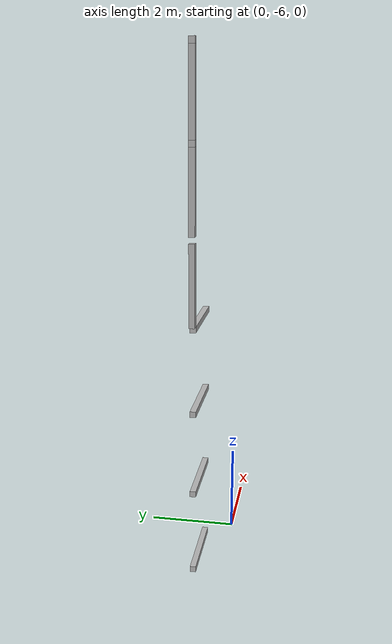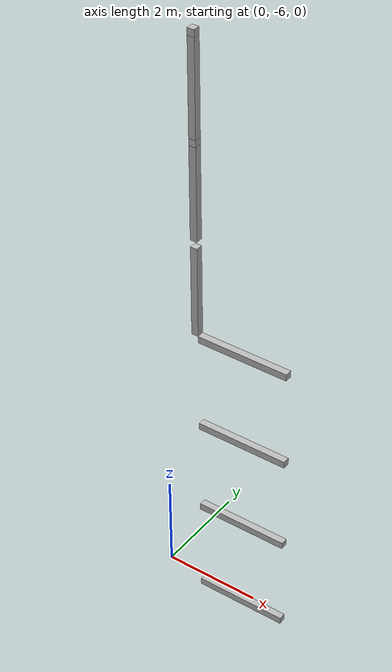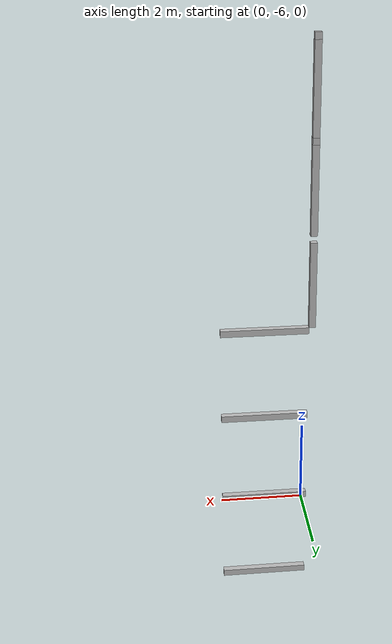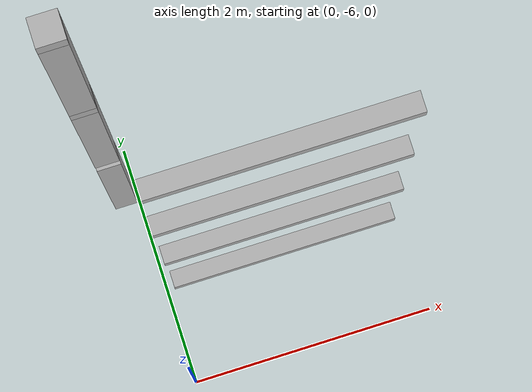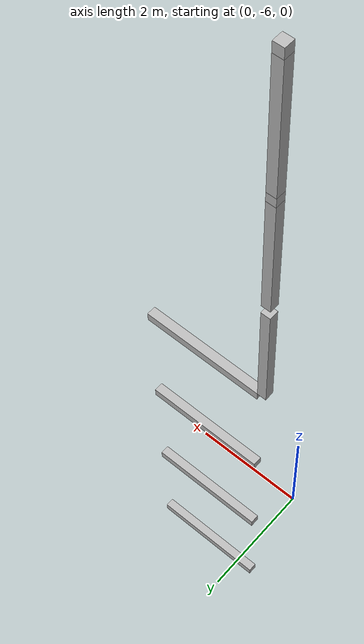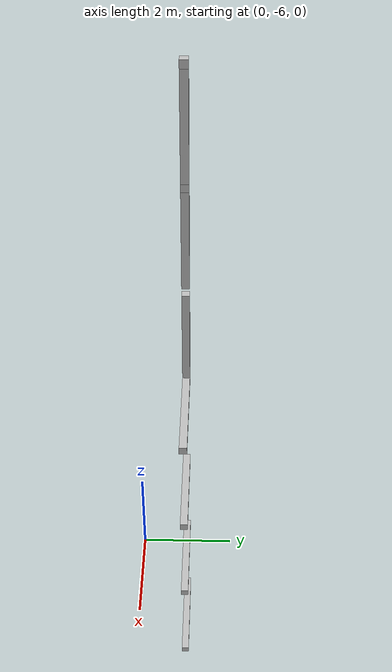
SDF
<sdf version="1.7">
 <world name="default">
  <model name="orthogonal_747_2.000.15_TS">
   <static>1</static>
   <link name="x_link_0_0_3">
    <inertial>
     <mass>1</mass>
     <inertia>
      <ixx>0.166667</ixx>
      <ixy>0</ixy>
      <ixz>0</ixz>
      <iyy>0.166667</iyy>
      <iyz>0</iyz>
      <izz>0.166667</izz>
     </inertia>
    </inertial>
    <pose>7.525 0 1.075 0 -0 0</pose>
    <visual name="visual_0">
     <laser_retro>64</laser_retro>
     <geometry><box><size>2 1e-06 0.15</size></box></geometry>
     <material>
      <script><name>Gazebo/Grey</name><uri>file://media/materials/scripts/gazebo.material</uri></script>
      <shader type="pixel"><normal_map>__default__</normal_map></shader>
      <ambient>0.678 0.498 0.659 1</ambient>
      <diffuse>0.7 0.7 0.7 1</diffuse>
      <specular>0.01 0.01 0.01 1</specular>
      <emissive>0 0 0 1</emissive>
     </material>
     <pose>0 -0.075 0 0 -0 0</pose>
     <transparency>1</transparency>
    </visual>
    <visual name="visual_1">
     <laser_retro>65</laser_retro>
     <geometry><box><size>2 1e-06 0.15</size></box></geometry>
     <material>
      <script><name>Gazebo/Grey</name><uri>file://media/materials/scripts/gazebo.material</uri></script>
      <shader type="pixel"><normal_map>__default__</normal_map></shader>
      <ambient>0.447 0.624 0.812 1</ambient>
      <diffuse>0.7 0.7 0.7 1</diffuse>
      <specular>0.01 0.01 0.01 1</specular>
      <emissive>0 0 0 1</emissive>
     </material>
     <pose>0 0.075 0 0 -0 0</pose>
     <transparency>1</transparency>
    </visual>
    <visual name="visual_2">
     <laser_retro>66</laser_retro>
     <geometry><box><size>2 0.15 1e-06</size></box></geometry>
     <material>
      <script><name>Gazebo/Grey</name><uri>file://media/materials/scripts/gazebo.material</uri></script>
      <shader type="pixel"><normal_map>__default__</normal_map></shader>
      <ambient>0.988 0.686 0.243 1</ambient>
      <diffuse>0.7 0.7 0.7 1</diffuse>
      <specular>0.01 0.01 0.01 1</specular>
      <emissive>0 0 0 1</emissive>
     </material>
     <pose>0 0 -0.075 0 -0 0</pose>
     <transparency>1</transparency>
    </visual>
    <visual name="visual_3">
     <laser_retro>67</laser_retro>
     <geometry><box><size>1e-06 0.15 0.15</size></box></geometry>
     <material>
      <script><name>Gazebo/Grey</name><uri>file://media/materials/scripts/gazebo.material</uri></script>
      <shader type="pixel"><normal_map>__default__</normal_map></shader>
      <ambient>0.988 0.914 0.31 1</ambient>
      <diffuse>0.7 0.7 0.7 1</diffuse>
      <specular>0.01 0.01 0.01 1</specular>
      <emissive>0 0 0 1</emissive>
     </material>
     <pose>1 0 0 0 -0 0</pose>
     <transparency>1</transparency>
    </visual>
    <visual name="visual_4">
     <laser_retro>68</laser_retro>
     <geometry><box><size>2 0.15 1e-06</size></box></geometry>
     <material>
      <script><name>Gazebo/Grey</name><uri>file://media/materials/scripts/gazebo.material</uri></script>
      <shader type="pixel"><normal_map>__default__</normal_map></shader>
      <ambient>0.937 0.161 0.161 1</ambient>
      <diffuse>0.7 0.7 0.7 1</diffuse>
      <specular>0.01 0.01 0.01 1</specular>
      <emissive>0 0 0 1</emissive>
     </material>
     <pose>0 0 0.075 0 -0 0</pose>
     <transparency>1</transparency>
    </visual>
    <visual name="visual_5">
     <laser_retro>69</laser_retro>
     <geometry><box><size>1e-06 0.15 0.15</size></box></geometry>
     <material>
      <script><name>Gazebo/Grey</name><uri>file://media/materials/scripts/gazebo.material</uri></script>
      <shader type="pixel"><normal_map>__default__</normal_map></shader>
      <ambient>0.541 0.886 0.204 1</ambient>
      <diffuse>0.7 0.7 0.7 1</diffuse>
      <specular>0.01 0.01 0.01 1</specular>
      <emissive>0 0 0 1</emissive>
     </material>
     <pose>-1 0 0 0 -0 0</pose>
     <transparency>1</transparency>
    </visual>
    <visual name="visual_texture">
     <geometry><box><size>1.9998 0.149985 0.149985</size></box></geometry>
     <material>
      <script>
       <uri>model://BASE_MODELS/simple_block_v2_textured/materials/scripts</uri>
       <uri>model://BASE_MODELS/simple_block_v2_textured/materials/textures</uri>
       <name>metal</name>
      </script>
     </material>
     <laser_retro>70</laser_retro>
    </visual>
    <collision name="collision">
     <geometry><box><size>2 0.15 0.15</size></box></geometry>
     <surface>
      <friction>
       <ode><mu>1</mu><mu2>1</mu2><fdir1>0 0 0</fdir1><slip1>0</slip1><slip2>0</slip2></ode>
       <torsional>
        <coefficient>1</coefficient>
        <patch_radius>0</patch_radius>
        <surface_radius>0</surface_radius>
        <use_patch_radius>1</use_patch_radius>
        <ode><slip>0</slip></ode>
       </torsional>
      </friction>
      <bounce><restitution_coefficient>0</restitution_coefficient><threshold>1e+06</threshold></bounce>
      <contact>
       <collide_without_contact>0</collide_without_contact>
       <collide_without_contact_bitmask>1</collide_without_contact_bitmask>
       <collide_bitmask>1</collide_bitmask>
       <ode>
        <soft_cfm>0</soft_cfm>
        <soft_erp>0.2</soft_erp>
        <kp>1e+13</kp>
        <kd>1</kd>
        <max_vel>0.01</max_vel>
        <min_depth>0</min_depth>
       </ode>
       <bullet>
        <split_impulse>1</split_impulse>
        <split_impulse_penetration_threshold>-0.01</split_impulse_penetration_threshold>
        <soft_cfm>0</soft_cfm>
        <soft_erp>0.2</soft_erp>
        <kp>1e+13</kp>
        <kd>1</kd>
       </bullet>
      </contact>
     </surface>
    </collision>
   </link>
   <link name="x_link_1_0_3">
    <inertial>
     <mass>1</mass>
     <inertia>
      <ixx>0.166667</ixx>
      <ixy>0</ixy>
      <ixz>0</ixz>
      <iyy>0.166667</iyy>
      <iyz>0</iyz>
      <izz>0.166667</izz>
     </inertia>
    </inertial>
    <pose>7.525 0 3.225 0 -0 0</pose>
    <visual name="visual_0">
     <laser_retro>834</laser_retro>
     <geometry><box><size>2 1e-06 0.15</size></box></geometry>
     <material>
      <script><name>Gazebo/Grey</name><uri>file://media/materials/scripts/gazebo.material</uri></script>
      <shader type="pixel"><normal_map>__default__</normal_map></shader>
      <ambient>0.678 0.498 0.659 1</ambient>
      <diffuse>0.7 0.7 0.7 1</diffuse>
      <specular>0.01 0.01 0.01 1</specular>
      <emissive>0 0 0 1</emissive>
     </material>
     <pose>0 -0.075 0 0 -0 0</pose>
     <transparency>1</transparency>
    </visual>
    <visual name="visual_1">
     <laser_retro>835</laser_retro>
     <geometry><box><size>2 1e-06 0.15</size></box></geometry>
     <material>
      <script><name>Gazebo/Grey</name><uri>file://media/materials/scripts/gazebo.material</uri></script>
      <shader type="pixel"><normal_map>__default__</normal_map></shader>
      <ambient>0.447 0.624 0.812 1</ambient>
      <diffuse>0.7 0.7 0.7 1</diffuse>
      <specular>0.01 0.01 0.01 1</specular>
      <emissive>0 0 0 1</emissive>
     </material>
     <pose>0 0.075 0 0 -0 0</pose>
     <transparency>1</transparency>
    </visual>
    <visual name="visual_2">
     <laser_retro>836</laser_retro>
     <geometry><box><size>2 0.15 1e-06</size></box></geometry>
     <material>
      <script><name>Gazebo/Grey</name><uri>file://media/materials/scripts/gazebo.material</uri></script>
      <shader type="pixel"><normal_map>__default__</normal_map></shader>
      <ambient>0.988 0.686 0.243 1</ambient>
      <diffuse>0.7 0.7 0.7 1</diffuse>
      <specular>0.01 0.01 0.01 1</specular>
      <emissive>0 0 0 1</emissive>
     </material>
     <pose>0 0 -0.075 0 -0 0</pose>
     <transparency>1</transparency>
    </visual>
    <visual name="visual_3">
     <laser_retro>837</laser_retro>
     <geometry><box><size>1e-06 0.15 0.15</size></box></geometry>
     <material>
      <script><name>Gazebo/Grey</name><uri>file://media/materials/scripts/gazebo.material</uri></script>
      <shader type="pixel"><normal_map>__default__</normal_map></shader>
      <ambient>0.988 0.914 0.31 1</ambient>
      <diffuse>0.7 0.7 0.7 1</diffuse>
      <specular>0.01 0.01 0.01 1</specular>
      <emissive>0 0 0 1</emissive>
     </material>
     <pose>1 0 0 0 -0 0</pose>
     <transparency>1</transparency>
    </visual>
    <visual name="visual_4">
     <laser_retro>838</laser_retro>
     <geometry><box><size>2 0.15 1e-06</size></box></geometry>
     <material>
      <script><name>Gazebo/Grey</name><uri>file://media/materials/scripts/gazebo.material</uri></script>
      <shader type="pixel"><normal_map>__default__</normal_map></shader>
      <ambient>0.937 0.161 0.161 1</ambient>
      <diffuse>0.7 0.7 0.7 1</diffuse>
      <specular>0.01 0.01 0.01 1</specular>
      <emissive>0 0 0 1</emissive>
     </material>
     <pose>0 0 0.075 0 -0 0</pose>
     <transparency>1</transparency>
    </visual>
    <visual name="visual_5">
     <laser_retro>839</laser_retro>
     <geometry><box><size>1e-06 0.15 0.15</size></box></geometry>
     <material>
      <script><name>Gazebo/Grey</name><uri>file://media/materials/scripts/gazebo.material</uri></script>
      <shader type="pixel"><normal_map>__default__</normal_map></shader>
      <ambient>0.541 0.886 0.204 1</ambient>
      <diffuse>0.7 0.7 0.7 1</diffuse>
      <specular>0.01 0.01 0.01 1</specular>
      <emissive>0 0 0 1</emissive>
     </material>
     <pose>-1 0 0 0 -0 0</pose>
     <transparency>1</transparency>
    </visual>
    <visual name="visual_texture">
     <geometry><box><size>1.9998 0.149985 0.149985</size></box></geometry>
     <material>
      <script>
       <uri>model://BASE_MODELS/simple_block_v2_textured/materials/scripts</uri>
       <uri>model://BASE_MODELS/simple_block_v2_textured/materials/textures</uri>
       <name>metal</name>
      </script>
     </material>
     <laser_retro>840</laser_retro>
    </visual>
    <collision name="collision">
     <geometry><box><size>2 0.15 0.15</size></box></geometry>
     <surface>
      <friction>
       <ode><mu>1</mu><mu2>1</mu2><fdir1>0 0 0</fdir1><slip1>0</slip1><slip2>0</slip2></ode>
       <torsional>
        <coefficient>1</coefficient>
        <patch_radius>0</patch_radius>
        <surface_radius>0</surface_radius>
        <use_patch_radius>1</use_patch_radius>
        <ode><slip>0</slip></ode>
       </torsional>
      </friction>
      <bounce><restitution_coefficient>0</restitution_coefficient><threshold>1e+06</threshold></bounce>
      <contact>
       <collide_without_contact>0</collide_without_contact>
       <collide_without_contact_bitmask>1</collide_without_contact_bitmask>
       <collide_bitmask>1</collide_bitmask>
       <ode>
        <soft_cfm>0</soft_cfm>
        <soft_erp>0.2</soft_erp>
        <kp>1e+13</kp>
        <kd>1</kd>
        <max_vel>0.01</max_vel>
        <min_depth>0</min_depth>
       </ode>
       <bullet>
        <split_impulse>1</split_impulse>
        <split_impulse_penetration_threshold>-0.01</split_impulse_penetration_threshold>
        <soft_cfm>0</soft_cfm>
        <soft_erp>0.2</soft_erp>
        <kp>1e+13</kp>
        <kd>1</kd>
       </bullet>
      </contact>
     </surface>
    </collision>
   </link>
   <link name="x_link_2_0_3">
    <inertial>
     <mass>1</mass>
     <inertia>
      <ixx>0.166667</ixx>
      <ixy>0</ixy>
      <ixz>0</ixz>
      <iyy>0.166667</iyy>
      <iyz>0</iyz>
      <izz>0.166667</izz>
     </inertia>
    </inertial>
    <pose>7.525 0 5.375 0 -0 0</pose>
    <visual name="visual_0">
     <laser_retro>1737</laser_retro>
     <geometry><box><size>2 1e-06 0.15</size></box></geometry>
     <material>
      <script><name>Gazebo/Grey</name><uri>file://media/materials/scripts/gazebo.material</uri></script>
      <shader type="pixel"><normal_map>__default__</normal_map></shader>
      <ambient>0.678 0.498 0.659 1</ambient>
      <diffuse>0.7 0.7 0.7 1</diffuse>
      <specular>0.01 0.01 0.01 1</specular>
      <emissive>0 0 0 1</emissive>
     </material>
     <pose>0 -0.075 0 0 -0 0</pose>
     <transparency>1</transparency>
    </visual>
    <visual name="visual_1">
     <laser_retro>1738</laser_retro>
     <geometry><box><size>2 1e-06 0.15</size></box></geometry>
     <material>
      <script><name>Gazebo/Grey</name><uri>file://media/materials/scripts/gazebo.material</uri></script>
      <shader type="pixel"><normal_map>__default__</normal_map></shader>
      <ambient>0.447 0.624 0.812 1</ambient>
      <diffuse>0.7 0.7 0.7 1</diffuse>
      <specular>0.01 0.01 0.01 1</specular>
      <emissive>0 0 0 1</emissive>
     </material>
     <pose>0 0.075 0 0 -0 0</pose>
     <transparency>1</transparency>
    </visual>
    <visual name="visual_2">
     <laser_retro>1739</laser_retro>
     <geometry><box><size>2 0.15 1e-06</size></box></geometry>
     <material>
      <script><name>Gazebo/Grey</name><uri>file://media/materials/scripts/gazebo.material</uri></script>
      <shader type="pixel"><normal_map>__default__</normal_map></shader>
      <ambient>0.988 0.686 0.243 1</ambient>
      <diffuse>0.7 0.7 0.7 1</diffuse>
      <specular>0.01 0.01 0.01 1</specular>
      <emissive>0 0 0 1</emissive>
     </material>
     <pose>0 0 -0.075 0 -0 0</pose>
     <transparency>1</transparency>
    </visual>
    <visual name="visual_3">
     <laser_retro>1740</laser_retro>
     <geometry><box><size>1e-06 0.15 0.15</size></box></geometry>
     <material>
      <script><name>Gazebo/Grey</name><uri>file://media/materials/scripts/gazebo.material</uri></script>
      <shader type="pixel"><normal_map>__default__</normal_map></shader>
      <ambient>0.988 0.914 0.31 1</ambient>
      <diffuse>0.7 0.7 0.7 1</diffuse>
      <specular>0.01 0.01 0.01 1</specular>
      <emissive>0 0 0 1</emissive>
     </material>
     <pose>1 0 0 0 -0 0</pose>
     <transparency>1</transparency>
    </visual>
    <visual name="visual_4">
     <laser_retro>1741</laser_retro>
     <geometry><box><size>2 0.15 1e-06</size></box></geometry>
     <material>
      <script><name>Gazebo/Grey</name><uri>file://media/materials/scripts/gazebo.material</uri></script>
      <shader type="pixel"><normal_map>__default__</normal_map></shader>
      <ambient>0.937 0.161 0.161 1</ambient>
      <diffuse>0.7 0.7 0.7 1</diffuse>
      <specular>0.01 0.01 0.01 1</specular>
      <emissive>0 0 0 1</emissive>
     </material>
     <pose>0 0 0.075 0 -0 0</pose>
     <transparency>1</transparency>
    </visual>
    <visual name="visual_5">
     <laser_retro>1742</laser_retro>
     <geometry><box><size>1e-06 0.15 0.15</size></box></geometry>
     <material>
      <script><name>Gazebo/Grey</name><uri>file://media/materials/scripts/gazebo.material</uri></script>
      <shader type="pixel"><normal_map>__default__</normal_map></shader>
      <ambient>0.541 0.886 0.204 1</ambient>
      <diffuse>0.7 0.7 0.7 1</diffuse>
      <specular>0.01 0.01 0.01 1</specular>
      <emissive>0 0 0 1</emissive>
     </material>
     <pose>-1 0 0 0 -0 0</pose>
     <transparency>1</transparency>
    </visual>
    <visual name="visual_texture">
     <geometry><box><size>1.9998 0.149985 0.149985</size></box></geometry>
     <material>
      <script>
       <uri>model://BASE_MODELS/simple_block_v2_textured/materials/scripts</uri>
       <uri>model://BASE_MODELS/simple_block_v2_textured/materials/textures</uri>
       <name>metal</name>
      </script>
     </material>
     <laser_retro>1743</laser_retro>
    </visual>
    <collision name="collision">
     <geometry><box><size>2 0.15 0.15</size></box></geometry>
     <surface>
      <friction>
       <ode><mu>1</mu><mu2>1</mu2><fdir1>0 0 0</fdir1><slip1>0</slip1><slip2>0</slip2></ode>
       <torsional>
        <coefficient>1</coefficient>
        <patch_radius>0</patch_radius>
        <surface_radius>0</surface_radius>
        <use_patch_radius>1</use_patch_radius>
        <ode><slip>0</slip></ode>
       </torsional>
      </friction>
      <bounce><restitution_coefficient>0</restitution_coefficient><threshold>1e+06</threshold></bounce>
      <contact>
       <collide_without_contact>0</collide_without_contact>
       <collide_without_contact_bitmask>1</collide_without_contact_bitmask>
       <collide_bitmask>1</collide_bitmask>
       <ode>
        <soft_cfm>0</soft_cfm>
        <soft_erp>0.2</soft_erp>
        <kp>1e+13</kp>
        <kd>1</kd>
        <max_vel>0.01</max_vel>
        <min_depth>0</min_depth>
       </ode>
       <bullet>
        <split_impulse>1</split_impulse>
        <split_impulse_penetration_threshold>-0.01</split_impulse_penetration_threshold>
        <soft_cfm>0</soft_cfm>
        <soft_erp>0.2</soft_erp>
        <kp>1e+13</kp>
        <kd>1</kd>
       </bullet>
      </contact>
     </surface>
    </collision>
   </link>
   <link name="x_link_3_0_3">
    <inertial>
     <mass>1</mass>
     <inertia>
      <ixx>0.166667</ixx>
      <ixy>0</ixy>
      <ixz>0</ixz>
      <iyy>0.166667</iyy>
      <iyz>0</iyz>
      <izz>0.166667</izz>
     </inertia>
    </inertial>
    <pose>7.525 0 7.525 0 -0 0</pose>
    <visual name="visual_0">
     <laser_retro>2640</laser_retro>
     <geometry><box><size>2 1e-06 0.15</size></box></geometry>
     <material>
      <script><name>Gazebo/Grey</name><uri>file://media/materials/scripts/gazebo.material</uri></script>
      <shader type="pixel"><normal_map>__default__</normal_map></shader>
      <ambient>0.678 0.498 0.659 1</ambient>
      <diffuse>0.7 0.7 0.7 1</diffuse>
      <specular>0.01 0.01 0.01 1</specular>
      <emissive>0 0 0 1</emissive>
     </material>
     <pose>0 -0.075 0 0 -0 0</pose>
     <transparency>1</transparency>
    </visual>
    <visual name="visual_1">
     <laser_retro>2641</laser_retro>
     <geometry><box><size>2 1e-06 0.15</size></box></geometry>
     <material>
      <script><name>Gazebo/Grey</name><uri>file://media/materials/scripts/gazebo.material</uri></script>
      <shader type="pixel"><normal_map>__default__</normal_map></shader>
      <ambient>0.447 0.624 0.812 1</ambient>
      <diffuse>0.7 0.7 0.7 1</diffuse>
      <specular>0.01 0.01 0.01 1</specular>
      <emissive>0 0 0 1</emissive>
     </material>
     <pose>0 0.075 0 0 -0 0</pose>
     <transparency>1</transparency>
    </visual>
    <visual name="visual_2">
     <laser_retro>2642</laser_retro>
     <geometry><box><size>2 0.15 1e-06</size></box></geometry>
     <material>
      <script><name>Gazebo/Grey</name><uri>file://media/materials/scripts/gazebo.material</uri></script>
      <shader type="pixel"><normal_map>__default__</normal_map></shader>
      <ambient>0.988 0.686 0.243 1</ambient>
      <diffuse>0.7 0.7 0.7 1</diffuse>
      <specular>0.01 0.01 0.01 1</specular>
      <emissive>0 0 0 1</emissive>
     </material>
     <pose>0 0 -0.075 0 -0 0</pose>
     <transparency>1</transparency>
    </visual>
    <visual name="visual_3">
     <laser_retro>2643</laser_retro>
     <geometry><box><size>1e-06 0.15 0.15</size></box></geometry>
     <material>
      <script><name>Gazebo/Grey</name><uri>file://media/materials/scripts/gazebo.material</uri></script>
      <shader type="pixel"><normal_map>__default__</normal_map></shader>
      <ambient>0.988 0.914 0.31 1</ambient>
      <diffuse>0.7 0.7 0.7 1</diffuse>
      <specular>0.01 0.01 0.01 1</specular>
      <emissive>0 0 0 1</emissive>
     </material>
     <pose>1 0 0 0 -0 0</pose>
     <transparency>1</transparency>
    </visual>
    <visual name="visual_4">
     <laser_retro>2644</laser_retro>
     <geometry><box><size>2 0.15 1e-06</size></box></geometry>
     <material>
      <script><name>Gazebo/Grey</name><uri>file://media/materials/scripts/gazebo.material</uri></script>
      <shader type="pixel"><normal_map>__default__</normal_map></shader>
      <ambient>0.937 0.161 0.161 1</ambient>
      <diffuse>0.7 0.7 0.7 1</diffuse>
      <specular>0.01 0.01 0.01 1</specular>
      <emissive>0 0 0 1</emissive>
     </material>
     <pose>0 0 0.075 0 -0 0</pose>
     <transparency>1</transparency>
    </visual>
    <visual name="visual_5">
     <laser_retro>2645</laser_retro>
     <geometry><box><size>1e-06 0.15 0.15</size></box></geometry>
     <material>
      <script><name>Gazebo/Grey</name><uri>file://media/materials/scripts/gazebo.material</uri></script>
      <shader type="pixel"><normal_map>__default__</normal_map></shader>
      <ambient>0.541 0.886 0.204 1</ambient>
      <diffuse>0.7 0.7 0.7 1</diffuse>
      <specular>0.01 0.01 0.01 1</specular>
      <emissive>0 0 0 1</emissive>
     </material>
     <pose>-1 0 0 0 -0 0</pose>
     <transparency>1</transparency>
    </visual>
    <visual name="visual_texture">
     <geometry><box><size>1.9998 0.149985 0.149985</size></box></geometry>
     <material>
      <script>
       <uri>model://BASE_MODELS/simple_block_v2_textured/materials/scripts</uri>
       <uri>model://BASE_MODELS/simple_block_v2_textured/materials/textures</uri>
       <name>metal</name>
      </script>
     </material>
     <laser_retro>2646</laser_retro>
    </visual>
    <collision name="collision">
     <geometry><box><size>2 0.15 0.15</size></box></geometry>
     <surface>
      <friction>
       <ode><mu>1</mu><mu2>1</mu2><fdir1>0 0 0</fdir1><slip1>0</slip1><slip2>0</slip2></ode>
       <torsional>
        <coefficient>1</coefficient>
        <patch_radius>0</patch_radius>
        <surface_radius>0</surface_radius>
        <use_patch_radius>1</use_patch_radius>
        <ode><slip>0</slip></ode>
       </torsional>
      </friction>
      <bounce><restitution_coefficient>0</restitution_coefficient><threshold>1e+06</threshold></bounce>
      <contact>
       <collide_without_contact>0</collide_without_contact>
       <collide_without_contact_bitmask>1</collide_without_contact_bitmask>
       <collide_bitmask>1</collide_bitmask>
       <ode>
        <soft_cfm>0</soft_cfm>
        <soft_erp>0.2</soft_erp>
        <kp>1e+13</kp>
        <kd>1</kd>
        <max_vel>0.01</max_vel>
        <min_depth>0</min_depth>
       </ode>
       <bullet>
        <split_impulse>1</split_impulse>
        <split_impulse_penetration_threshold>-0.01</split_impulse_penetration_threshold>
        <soft_cfm>0</soft_cfm>
        <soft_erp>0.2</soft_erp>
        <kp>1e+13</kp>
        <kd>1</kd>
       </bullet>
      </contact>
     </surface>
    </collision>
   </link>
   <link name="z_link_4_0_3">
    <inertial>
     <mass>1</mass>
     <inertia>
      <ixx>0.166667</ixx>
      <ixy>0</ixy>
      <ixz>0</ixz>
      <iyy>0.166667</iyy>
      <iyz>0</iyz>
      <izz>0.166667</izz>
     </inertia>
    </inertial>
    <pose>6.45 0 8.6 0 -0 0</pose>
    <visual name="visual_0">
     <laser_retro>3564</laser_retro>
     <geometry><box><size>0.15 1e-06 2</size></box></geometry>
     <material>
      <script><name>Gazebo/Grey</name><uri>file://media/materials/scripts/gazebo.material</uri></script>
      <shader type="pixel"><normal_map>__default__</normal_map></shader>
      <ambient>0.678 0.498 0.659 1</ambient>
      <diffuse>0.7 0.7 0.7 1</diffuse>
      <specular>0.01 0.01 0.01 1</specular>
      <emissive>0 0 0 1</emissive>
     </material>
     <pose>0 -0.075 0 0 -0 0</pose>
     <transparency>1</transparency>
    </visual>
    <visual name="visual_1">
     <laser_retro>3565</laser_retro>
     <geometry><box><size>0.15 1e-06 2</size></box></geometry>
     <material>
      <script><name>Gazebo/Grey</name><uri>file://media/materials/scripts/gazebo.material</uri></script>
      <shader type="pixel"><normal_map>__default__</normal_map></shader>
      <ambient>0.447 0.624 0.812 1</ambient>
      <diffuse>0.7 0.7 0.7 1</diffuse>
      <specular>0.01 0.01 0.01 1</specular>
      <emissive>0 0 0 1</emissive>
     </material>
     <pose>0 0.075 0 0 -0 0</pose>
     <transparency>1</transparency>
    </visual>
    <visual name="visual_2">
     <laser_retro>3566</laser_retro>
     <geometry><box><size>0.15 0.15 1e-06</size></box></geometry>
     <material>
      <script><name>Gazebo/Grey</name><uri>file://media/materials/scripts/gazebo.material</uri></script>
      <shader type="pixel"><normal_map>__default__</normal_map></shader>
      <ambient>0.988 0.686 0.243 1</ambient>
      <diffuse>0.7 0.7 0.7 1</diffuse>
      <specular>0.01 0.01 0.01 1</specular>
      <emissive>0 0 0 1</emissive>
     </material>
     <pose>0 0 -1 0 -0 0</pose>
     <transparency>1</transparency>
    </visual>
    <visual name="visual_3">
     <laser_retro>3567</laser_retro>
     <geometry><box><size>1e-06 0.15 2</size></box></geometry>
     <material>
      <script><name>Gazebo/Grey</name><uri>file://media/materials/scripts/gazebo.material</uri></script>
      <shader type="pixel"><normal_map>__default__</normal_map></shader>
      <ambient>0.988 0.914 0.31 1</ambient>
      <diffuse>0.7 0.7 0.7 1</diffuse>
      <specular>0.01 0.01 0.01 1</specular>
      <emissive>0 0 0 1</emissive>
     </material>
     <pose>0.075 0 0 0 -0 0</pose>
     <transparency>1</transparency>
    </visual>
    <visual name="visual_4">
     <laser_retro>3568</laser_retro>
     <geometry><box><size>0.15 0.15 1e-06</size></box></geometry>
     <material>
      <script><name>Gazebo/Grey</name><uri>file://media/materials/scripts/gazebo.material</uri></script>
      <shader type="pixel"><normal_map>__default__</normal_map></shader>
      <ambient>0.937 0.161 0.161 1</ambient>
      <diffuse>0.7 0.7 0.7 1</diffuse>
      <specular>0.01 0.01 0.01 1</specular>
      <emissive>0 0 0 1</emissive>
     </material>
     <pose>0 0 1 0 -0 0</pose>
     <transparency>1</transparency>
    </visual>
    <visual name="visual_5">
     <laser_retro>3569</laser_retro>
     <geometry><box><size>1e-06 0.15 2</size></box></geometry>
     <material>
      <script><name>Gazebo/Grey</name><uri>file://media/materials/scripts/gazebo.material</uri></script>
      <shader type="pixel"><normal_map>__default__</normal_map></shader>
      <ambient>0.541 0.886 0.204 1</ambient>
      <diffuse>0.7 0.7 0.7 1</diffuse>
      <specular>0.01 0.01 0.01 1</specular>
      <emissive>0 0 0 1</emissive>
     </material>
     <pose>-0.075 0 0 0 -0 0</pose>
     <transparency>1</transparency>
    </visual>
    <visual name="visual_texture">
     <geometry><box><size>0.149985 0.149985 1.9998</size></box></geometry>
     <material>
      <script>
       <uri>model://BASE_MODELS/simple_block_v2_textured/materials/scripts</uri>
       <uri>model://BASE_MODELS/simple_block_v2_textured/materials/textures</uri>
       <name>metal</name>
      </script>
     </material>
     <laser_retro>3570</laser_retro>
    </visual>
    <collision name="collision">
     <geometry><box><size>0.15 0.15 2</size></box></geometry>
     <surface>
      <friction>
       <ode><mu>1</mu><mu2>1</mu2><fdir1>0 0 0</fdir1><slip1>0</slip1><slip2>0</slip2></ode>
       <torsional>
        <coefficient>1</coefficient>
        <patch_radius>0</patch_radius>
        <surface_radius>0</surface_radius>
        <use_patch_radius>1</use_patch_radius>
        <ode><slip>0</slip></ode>
       </torsional>
      </friction>
      <bounce><restitution_coefficient>0</restitution_coefficient><threshold>1e+06</threshold></bounce>
      <contact>
       <collide_without_contact>0</collide_without_contact>
       <collide_without_contact_bitmask>1</collide_without_contact_bitmask>
       <collide_bitmask>1</collide_bitmask>
       <ode>
        <soft_cfm>0</soft_cfm>
        <soft_erp>0.2</soft_erp>
        <kp>1e+13</kp>
        <kd>1</kd>
        <max_vel>0.01</max_vel>
        <min_depth>0</min_depth>
       </ode>
       <bullet>
        <split_impulse>1</split_impulse>
        <split_impulse_penetration_threshold>-0.01</split_impulse_penetration_threshold>
        <soft_cfm>0</soft_cfm>
        <soft_erp>0.2</soft_erp>
        <kp>1e+13</kp>
        <kd>1</kd>
       </bullet>
      </contact>
     </surface>
    </collision>
   </link>
   <link name="u_link_5_0_3">
    <inertial>
     <mass>1</mass>
     <inertia>
      <ixx>0.166667</ixx>
      <ixy>0</ixy>
      <ixz>0</ixz>
      <iyy>0.166667</iyy>
      <iyz>0</iyz>
      <izz>0.166667</izz>
     </inertia>
    </inertial>
    <pose>6.45 0 11.825 0 -0 0</pose>
    <visual name="visual_0">
     <laser_retro>4460</laser_retro>
     <geometry><box><size>0.15 1e-06 0.15</size></box></geometry>
     <material>
      <script><name>Gazebo/Grey</name><uri>file://media/materials/scripts/gazebo.material</uri></script>
      <shader type="pixel"><normal_map>__default__</normal_map></shader>
      <ambient>0.678 0.498 0.659 1</ambient>
      <diffuse>0.7 0.7 0.7 1</diffuse>
      <specular>0.01 0.01 0.01 1</specular>
      <emissive>0 0 0 1</emissive>
     </material>
     <pose>0 -0.075 0 0 -0 0</pose>
     <transparency>1</transparency>
    </visual>
    <visual name="visual_1">
     <laser_retro>4461</laser_retro>
     <geometry><box><size>0.15 1e-06 0.15</size></box></geometry>
     <material>
      <script><name>Gazebo/Grey</name><uri>file://media/materials/scripts/gazebo.material</uri></script>
      <shader type="pixel"><normal_map>__default__</normal_map></shader>
      <ambient>0.447 0.624 0.812 1</ambient>
      <diffuse>0.7 0.7 0.7 1</diffuse>
      <specular>0.01 0.01 0.01 1</specular>
      <emissive>0 0 0 1</emissive>
     </material>
     <pose>0 0.075 0 0 -0 0</pose>
     <transparency>1</transparency>
    </visual>
    <visual name="visual_2">
     <laser_retro>4462</laser_retro>
     <geometry><box><size>0.15 0.15 1e-06</size></box></geometry>
     <material>
      <script><name>Gazebo/Grey</name><uri>file://media/materials/scripts/gazebo.material</uri></script>
      <shader type="pixel"><normal_map>__default__</normal_map></shader>
      <ambient>0.988 0.686 0.243 1</ambient>
      <diffuse>0.7 0.7 0.7 1</diffuse>
      <specular>0.01 0.01 0.01 1</specular>
      <emissive>0 0 0 1</emissive>
     </material>
     <pose>0 0 -0.075 0 -0 0</pose>
     <transparency>1</transparency>
    </visual>
    <visual name="visual_3">
     <laser_retro>4463</laser_retro>
     <geometry><box><size>1e-06 0.15 0.15</size></box></geometry>
     <material>
      <script><name>Gazebo/Grey</name><uri>file://media/materials/scripts/gazebo.material</uri></script>
      <shader type="pixel"><normal_map>__default__</normal_map></shader>
      <ambient>0.988 0.914 0.31 1</ambient>
      <diffuse>0.7 0.7 0.7 1</diffuse>
      <specular>0.01 0.01 0.01 1</specular>
      <emissive>0 0 0 1</emissive>
     </material>
     <pose>0.075 0 0 0 -0 0</pose>
     <transparency>1</transparency>
    </visual>
    <visual name="visual_4">
     <laser_retro>4464</laser_retro>
     <geometry><box><size>0.15 0.15 1e-06</size></box></geometry>
     <material>
      <script><name>Gazebo/Grey</name><uri>file://media/materials/scripts/gazebo.material</uri></script>
      <shader type="pixel"><normal_map>__default__</normal_map></shader>
      <ambient>0.937 0.161 0.161 1</ambient>
      <diffuse>0.7 0.7 0.7 1</diffuse>
      <specular>0.01 0.01 0.01 1</specular>
      <emissive>0 0 0 1</emissive>
     </material>
     <pose>0 0 0.075 0 -0 0</pose>
     <transparency>1</transparency>
    </visual>
    <visual name="visual_5">
     <laser_retro>4465</laser_retro>
     <geometry><box><size>1e-06 0.15 0.15</size></box></geometry>
     <material>
      <script><name>Gazebo/Grey</name><uri>file://media/materials/scripts/gazebo.material</uri></script>
      <shader type="pixel"><normal_map>__default__</normal_map></shader>
      <ambient>0.541 0.886 0.204 1</ambient>
      <diffuse>0.7 0.7 0.7 1</diffuse>
      <specular>0.01 0.01 0.01 1</specular>
      <emissive>0 0 0 1</emissive>
     </material>
     <pose>-0.075 0 0 0 -0 0</pose>
     <transparency>1</transparency>
    </visual>
    <visual name="visual_texture">
     <geometry><box><size>0.149985 0.149985 0.149985</size></box></geometry>
     <material>
      <script>
       <uri>model://BASE_MODELS/simple_block_v2_textured/materials/scripts</uri>
       <uri>model://BASE_MODELS/simple_block_v2_textured/materials/textures</uri>
       <name>metal</name>
      </script>
     </material>
     <laser_retro>4466</laser_retro>
    </visual>
    <collision name="collision">
     <geometry><box><size>0.15 0.15 0.15</size></box></geometry>
     <surface>
      <friction>
       <ode><mu>1</mu><mu2>1</mu2><fdir1>0 0 0</fdir1><slip1>0</slip1><slip2>0</slip2></ode>
       <torsional>
        <coefficient>1</coefficient>
        <patch_radius>0</patch_radius>
        <surface_radius>0</surface_radius>
        <use_patch_radius>1</use_patch_radius>
        <ode><slip>0</slip></ode>
       </torsional>
      </friction>
      <bounce><restitution_coefficient>0</restitution_coefficient><threshold>1e+06</threshold></bounce>
      <contact>
       <collide_without_contact>0</collide_without_contact>
       <collide_without_contact_bitmask>1</collide_without_contact_bitmask>
       <collide_bitmask>1</collide_bitmask>
       <ode>
        <soft_cfm>0</soft_cfm>
        <soft_erp>0.2</soft_erp>
        <kp>1e+13</kp>
        <kd>1</kd>
        <max_vel>0.01</max_vel>
        <min_depth>0</min_depth>
       </ode>
       <bullet>
        <split_impulse>1</split_impulse>
        <split_impulse_penetration_threshold>-0.01</split_impulse_penetration_threshold>
        <soft_cfm>0</soft_cfm>
        <soft_erp>0.2</soft_erp>
        <kp>1e+13</kp>
        <kd>1</kd>
       </bullet>
      </contact>
     </surface>
    </collision>
   </link>
   <link name="z_link_5_0_3">
    <inertial>
     <mass>1</mass>
     <inertia>
      <ixx>0.166667</ixx>
      <ixy>0</ixy>
      <ixz>0</ixz>
      <iyy>0.166667</iyy>
      <iyz>0</iyz>
      <izz>0.166667</izz>
     </inertia>
    </inertial>
    <pose>6.45 0 10.75 0 -0 0</pose>
    <visual name="visual_0">
     <laser_retro>4467</laser_retro>
     <geometry><box><size>0.15 1e-06 2</size></box></geometry>
     <material>
      <script><name>Gazebo/Grey</name><uri>file://media/materials/scripts/gazebo.material</uri></script>
      <shader type="pixel"><normal_map>__default__</normal_map></shader>
      <ambient>0.678 0.498 0.659 1</ambient>
      <diffuse>0.7 0.7 0.7 1</diffuse>
      <specular>0.01 0.01 0.01 1</specular>
      <emissive>0 0 0 1</emissive>
     </material>
     <pose>0 -0.075 0 0 -0 0</pose>
     <transparency>1</transparency>
    </visual>
    <visual name="visual_1">
     <laser_retro>4468</laser_retro>
     <geometry><box><size>0.15 1e-06 2</size></box></geometry>
     <material>
      <script><name>Gazebo/Grey</name><uri>file://media/materials/scripts/gazebo.material</uri></script>
      <shader type="pixel"><normal_map>__default__</normal_map></shader>
      <ambient>0.447 0.624 0.812 1</ambient>
      <diffuse>0.7 0.7 0.7 1</diffuse>
      <specular>0.01 0.01 0.01 1</specular>
      <emissive>0 0 0 1</emissive>
     </material>
     <pose>0 0.075 0 0 -0 0</pose>
     <transparency>1</transparency>
    </visual>
    <visual name="visual_2">
     <laser_retro>4469</laser_retro>
     <geometry><box><size>0.15 0.15 1e-06</size></box></geometry>
     <material>
      <script><name>Gazebo/Grey</name><uri>file://media/materials/scripts/gazebo.material</uri></script>
      <shader type="pixel"><normal_map>__default__</normal_map></shader>
      <ambient>0.988 0.686 0.243 1</ambient>
      <diffuse>0.7 0.7 0.7 1</diffuse>
      <specular>0.01 0.01 0.01 1</specular>
      <emissive>0 0 0 1</emissive>
     </material>
     <pose>0 0 -1 0 -0 0</pose>
     <transparency>1</transparency>
    </visual>
    <visual name="visual_3">
     <laser_retro>4470</laser_retro>
     <geometry><box><size>1e-06 0.15 2</size></box></geometry>
     <material>
      <script><name>Gazebo/Grey</name><uri>file://media/materials/scripts/gazebo.material</uri></script>
      <shader type="pixel"><normal_map>__default__</normal_map></shader>
      <ambient>0.988 0.914 0.31 1</ambient>
      <diffuse>0.7 0.7 0.7 1</diffuse>
      <specular>0.01 0.01 0.01 1</specular>
      <emissive>0 0 0 1</emissive>
     </material>
     <pose>0.075 0 0 0 -0 0</pose>
     <transparency>1</transparency>
    </visual>
    <visual name="visual_4">
     <laser_retro>4471</laser_retro>
     <geometry><box><size>0.15 0.15 1e-06</size></box></geometry>
     <material>
      <script><name>Gazebo/Grey</name><uri>file://media/materials/scripts/gazebo.material</uri></script>
      <shader type="pixel"><normal_map>__default__</normal_map></shader>
      <ambient>0.937 0.161 0.161 1</ambient>
      <diffuse>0.7 0.7 0.7 1</diffuse>
      <specular>0.01 0.01 0.01 1</specular>
      <emissive>0 0 0 1</emissive>
     </material>
     <pose>0 0 1 0 -0 0</pose>
     <transparency>1</transparency>
    </visual>
    <visual name="visual_5">
     <laser_retro>4472</laser_retro>
     <geometry><box><size>1e-06 0.15 2</size></box></geometry>
     <material>
      <script><name>Gazebo/Grey</name><uri>file://media/materials/scripts/gazebo.material</uri></script>
      <shader type="pixel"><normal_map>__default__</normal_map></shader>
      <ambient>0.541 0.886 0.204 1</ambient>
      <diffuse>0.7 0.7 0.7 1</diffuse>
      <specular>0.01 0.01 0.01 1</specular>
      <emissive>0 0 0 1</emissive>
     </material>
     <pose>-0.075 0 0 0 -0 0</pose>
     <transparency>1</transparency>
    </visual>
    <visual name="visual_texture">
     <geometry><box><size>0.149985 0.149985 1.9998</size></box></geometry>
     <material>
      <script>
       <uri>model://BASE_MODELS/simple_block_v2_textured/materials/scripts</uri>
       <uri>model://BASE_MODELS/simple_block_v2_textured/materials/textures</uri>
       <name>metal</name>
      </script>
     </material>
     <laser_retro>4473</laser_retro>
    </visual>
    <collision name="collision">
     <geometry><box><size>0.15 0.15 2</size></box></geometry>
     <surface>
      <friction>
       <ode><mu>1</mu><mu2>1</mu2><fdir1>0 0 0</fdir1><slip1>0</slip1><slip2>0</slip2></ode>
       <torsional>
        <coefficient>1</coefficient>
        <patch_radius>0</patch_radius>
        <surface_radius>0</surface_radius>
        <use_patch_radius>1</use_patch_radius>
        <ode><slip>0</slip></ode>
       </torsional>
      </friction>
      <bounce><restitution_coefficient>0</restitution_coefficient><threshold>1e+06</threshold></bounce>
      <contact>
       <collide_without_contact>0</collide_without_contact>
       <collide_without_contact_bitmask>1</collide_without_contact_bitmask>
       <collide_bitmask>1</collide_bitmask>
       <ode>
        <soft_cfm>0</soft_cfm>
        <soft_erp>0.2</soft_erp>
        <kp>1e+13</kp>
        <kd>1</kd>
        <max_vel>0.01</max_vel>
        <min_depth>0</min_depth>
       </ode>
       <bullet>
        <split_impulse>1</split_impulse>
        <split_impulse_penetration_threshold>-0.01</split_impulse_penetration_threshold>
        <soft_cfm>0</soft_cfm>
        <soft_erp>0.2</soft_erp>
        <kp>1e+13</kp>
        <kd>1</kd>
       </bullet>
      </contact>
     </surface>
    </collision>
   </link>
   <link name="u_link_6_0_3">
    <inertial>
     <mass>1</mass>
     <inertia>
      <ixx>0.166667</ixx>
      <ixy>0</ixy>
      <ixz>0</ixz>
      <iyy>0.166667</iyy>
      <iyz>0</iyz>
      <izz>0.166667</izz>
     </inertia>
    </inertial>
    <pose>6.45 0 13.975 0 -0 0</pose>
    <visual name="visual_0">
     <laser_retro>5363</laser_retro>
     <geometry><box><size>0.15 1e-06 0.15</size></box></geometry>
     <material>
      <script><name>Gazebo/Grey</name><uri>file://media/materials/scripts/gazebo.material</uri></script>
      <shader type="pixel"><normal_map>__default__</normal_map></shader>
      <ambient>0.678 0.498 0.659 1</ambient>
      <diffuse>0.7 0.7 0.7 1</diffuse>
      <specular>0.01 0.01 0.01 1</specular>
      <emissive>0 0 0 1</emissive>
     </material>
     <pose>0 -0.075 0 0 -0 0</pose>
     <transparency>1</transparency>
    </visual>
    <visual name="visual_1">
     <laser_retro>5364</laser_retro>
     <geometry><box><size>0.15 1e-06 0.15</size></box></geometry>
     <material>
      <script><name>Gazebo/Grey</name><uri>file://media/materials/scripts/gazebo.material</uri></script>
      <shader type="pixel"><normal_map>__default__</normal_map></shader>
      <ambient>0.447 0.624 0.812 1</ambient>
      <diffuse>0.7 0.7 0.7 1</diffuse>
      <specular>0.01 0.01 0.01 1</specular>
      <emissive>0 0 0 1</emissive>
     </material>
     <pose>0 0.075 0 0 -0 0</pose>
     <transparency>1</transparency>
    </visual>
    <visual name="visual_2">
     <laser_retro>5365</laser_retro>
     <geometry><box><size>0.15 0.15 1e-06</size></box></geometry>
     <material>
      <script><name>Gazebo/Grey</name><uri>file://media/materials/scripts/gazebo.material</uri></script>
      <shader type="pixel"><normal_map>__default__</normal_map></shader>
      <ambient>0.988 0.686 0.243 1</ambient>
      <diffuse>0.7 0.7 0.7 1</diffuse>
      <specular>0.01 0.01 0.01 1</specular>
      <emissive>0 0 0 1</emissive>
     </material>
     <pose>0 0 -0.075 0 -0 0</pose>
     <transparency>1</transparency>
    </visual>
    <visual name="visual_3">
     <laser_retro>5366</laser_retro>
     <geometry><box><size>1e-06 0.15 0.15</size></box></geometry>
     <material>
      <script><name>Gazebo/Grey</name><uri>file://media/materials/scripts/gazebo.material</uri></script>
      <shader type="pixel"><normal_map>__default__</normal_map></shader>
      <ambient>0.988 0.914 0.31 1</ambient>
      <diffuse>0.7 0.7 0.7 1</diffuse>
      <specular>0.01 0.01 0.01 1</specular>
      <emissive>0 0 0 1</emissive>
     </material>
     <pose>0.075 0 0 0 -0 0</pose>
     <transparency>1</transparency>
    </visual>
    <visual name="visual_4">
     <laser_retro>5367</laser_retro>
     <geometry><box><size>0.15 0.15 1e-06</size></box></geometry>
     <material>
      <script><name>Gazebo/Grey</name><uri>file://media/materials/scripts/gazebo.material</uri></script>
      <shader type="pixel"><normal_map>__default__</normal_map></shader>
      <ambient>0.937 0.161 0.161 1</ambient>
      <diffuse>0.7 0.7 0.7 1</diffuse>
      <specular>0.01 0.01 0.01 1</specular>
      <emissive>0 0 0 1</emissive>
     </material>
     <pose>0 0 0.075 0 -0 0</pose>
     <transparency>1</transparency>
    </visual>
    <visual name="visual_5">
     <laser_retro>5368</laser_retro>
     <geometry><box><size>1e-06 0.15 0.15</size></box></geometry>
     <material>
      <script><name>Gazebo/Grey</name><uri>file://media/materials/scripts/gazebo.material</uri></script>
      <shader type="pixel"><normal_map>__default__</normal_map></shader>
      <ambient>0.541 0.886 0.204 1</ambient>
      <diffuse>0.7 0.7 0.7 1</diffuse>
      <specular>0.01 0.01 0.01 1</specular>
      <emissive>0 0 0 1</emissive>
     </material>
     <pose>-0.075 0 0 0 -0 0</pose>
     <transparency>1</transparency>
    </visual>
    <visual name="visual_texture">
     <geometry><box><size>0.149985 0.149985 0.149985</size></box></geometry>
     <material>
      <script>
       <uri>model://BASE_MODELS/simple_block_v2_textured/materials/scripts</uri>
       <uri>model://BASE_MODELS/simple_block_v2_textured/materials/textures</uri>
       <name>metal</name>
      </script>
     </material>
     <laser_retro>5369</laser_retro>
    </visual>
    <collision name="collision">
     <geometry><box><size>0.15 0.15 0.15</size></box></geometry>
     <surface>
      <friction>
       <ode><mu>1</mu><mu2>1</mu2><fdir1>0 0 0</fdir1><slip1>0</slip1><slip2>0</slip2></ode>
       <torsional>
        <coefficient>1</coefficient>
        <patch_radius>0</patch_radius>
        <surface_radius>0</surface_radius>
        <use_patch_radius>1</use_patch_radius>
        <ode><slip>0</slip></ode>
       </torsional>
      </friction>
      <bounce><restitution_coefficient>0</restitution_coefficient><threshold>1e+06</threshold></bounce>
      <contact>
       <collide_without_contact>0</collide_without_contact>
       <collide_without_contact_bitmask>1</collide_without_contact_bitmask>
       <collide_bitmask>1</collide_bitmask>
       <ode>
        <soft_cfm>0</soft_cfm>
        <soft_erp>0.2</soft_erp>
        <kp>1e+13</kp>
        <kd>1</kd>
        <max_vel>0.01</max_vel>
        <min_depth>0</min_depth>
       </ode>
       <bullet>
        <split_impulse>1</split_impulse>
        <split_impulse_penetration_threshold>-0.01</split_impulse_penetration_threshold>
        <soft_cfm>0</soft_cfm>
        <soft_erp>0.2</soft_erp>
        <kp>1e+13</kp>
        <kd>1</kd>
       </bullet>
      </contact>
     </surface>
    </collision>
   </link>
   <link name="z_link_6_0_3">
    <inertial>
     <mass>1</mass>
     <inertia>
      <ixx>0.166667</ixx>
      <ixy>0</ixy>
      <ixz>0</ixz>
      <iyy>0.166667</iyy>
      <iyz>0</iyz>
      <izz>0.166667</izz>
     </inertia>
    </inertial>
    <pose>6.45 0 12.9 0 -0 0</pose>
    <visual name="visual_0">
     <laser_retro>5370</laser_retro>
     <geometry><box><size>0.15 1e-06 2</size></box></geometry>
     <material>
      <script><name>Gazebo/Grey</name><uri>file://media/materials/scripts/gazebo.material</uri></script>
      <shader type="pixel"><normal_map>__default__</normal_map></shader>
      <ambient>0.678 0.498 0.659 1</ambient>
      <diffuse>0.7 0.7 0.7 1</diffuse>
      <specular>0.01 0.01 0.01 1</specular>
      <emissive>0 0 0 1</emissive>
     </material>
     <pose>0 -0.075 0 0 -0 0</pose>
     <transparency>1</transparency>
    </visual>
    <visual name="visual_1">
     <laser_retro>5371</laser_retro>
     <geometry><box><size>0.15 1e-06 2</size></box></geometry>
     <material>
      <script><name>Gazebo/Grey</name><uri>file://media/materials/scripts/gazebo.material</uri></script>
      <shader type="pixel"><normal_map>__default__</normal_map></shader>
      <ambient>0.447 0.624 0.812 1</ambient>
      <diffuse>0.7 0.7 0.7 1</diffuse>
      <specular>0.01 0.01 0.01 1</specular>
      <emissive>0 0 0 1</emissive>
     </material>
     <pose>0 0.075 0 0 -0 0</pose>
     <transparency>1</transparency>
    </visual>
    <visual name="visual_2">
     <laser_retro>5372</laser_retro>
     <geometry><box><size>0.15 0.15 1e-06</size></box></geometry>
     <material>
      <script><name>Gazebo/Grey</name><uri>file://media/materials/scripts/gazebo.material</uri></script>
      <shader type="pixel"><normal_map>__default__</normal_map></shader>
      <ambient>0.988 0.686 0.243 1</ambient>
      <diffuse>0.7 0.7 0.7 1</diffuse>
      <specular>0.01 0.01 0.01 1</specular>
      <emissive>0 0 0 1</emissive>
     </material>
     <pose>0 0 -1 0 -0 0</pose>
     <transparency>1</transparency>
    </visual>
    <visual name="visual_3">
     <laser_retro>5373</laser_retro>
     <geometry><box><size>1e-06 0.15 2</size></box></geometry>
     <material>
      <script><name>Gazebo/Grey</name><uri>file://media/materials/scripts/gazebo.material</uri></script>
      <shader type="pixel"><normal_map>__default__</normal_map></shader>
      <ambient>0.988 0.914 0.31 1</ambient>
      <diffuse>0.7 0.7 0.7 1</diffuse>
      <specular>0.01 0.01 0.01 1</specular>
      <emissive>0 0 0 1</emissive>
     </material>
     <pose>0.075 0 0 0 -0 0</pose>
     <transparency>1</transparency>
    </visual>
    <visual name="visual_4">
     <laser_retro>5374</laser_retro>
     <geometry><box><size>0.15 0.15 1e-06</size></box></geometry>
     <material>
      <script><name>Gazebo/Grey</name><uri>file://media/materials/scripts/gazebo.material</uri></script>
      <shader type="pixel"><normal_map>__default__</normal_map></shader>
      <ambient>0.937 0.161 0.161 1</ambient>
      <diffuse>0.7 0.7 0.7 1</diffuse>
      <specular>0.01 0.01 0.01 1</specular>
      <emissive>0 0 0 1</emissive>
     </material>
     <pose>0 0 1 0 -0 0</pose>
     <transparency>1</transparency>
    </visual>
    <visual name="visual_5">
     <laser_retro>5375</laser_retro>
     <geometry><box><size>1e-06 0.15 2</size></box></geometry>
     <material>
      <script><name>Gazebo/Grey</name><uri>file://media/materials/scripts/gazebo.material</uri></script>
      <shader type="pixel"><normal_map>__default__</normal_map></shader>
      <ambient>0.541 0.886 0.204 1</ambient>
      <diffuse>0.7 0.7 0.7 1</diffuse>
      <specular>0.01 0.01 0.01 1</specular>
      <emissive>0 0 0 1</emissive>
     </material>
     <pose>-0.075 0 0 0 -0 0</pose>
     <transparency>1</transparency>
    </visual>
    <visual name="visual_texture">
     <geometry><box><size>0.149985 0.149985 1.9998</size></box></geometry>
     <material>
      <script>
       <uri>model://BASE_MODELS/simple_block_v2_textured/materials/scripts</uri>
       <uri>model://BASE_MODELS/simple_block_v2_textured/materials/textures</uri>
       <name>metal</name>
      </script>
     </material>
     <laser_retro>5376</laser_retro>
    </visual>
    <collision name="collision">
     <geometry><box><size>0.15 0.15 2</size></box></geometry>
     <surface>
      <friction>
       <ode><mu>1</mu><mu2>1</mu2><fdir1>0 0 0</fdir1><slip1>0</slip1><slip2>0</slip2></ode>
       <torsional>
        <coefficient>1</coefficient>
        <patch_radius>0</patch_radius>
        <surface_radius>0</surface_radius>
        <use_patch_radius>1</use_patch_radius>
        <ode><slip>0</slip></ode>
       </torsional>
      </friction>
      <bounce><restitution_coefficient>0</restitution_coefficient><threshold>1e+06</threshold></bounce>
      <contact>
       <collide_without_contact>0</collide_without_contact>
       <collide_without_contact_bitmask>1</collide_without_contact_bitmask>
       <collide_bitmask>1</collide_bitmask>
       <ode>
        <soft_cfm>0</soft_cfm>
        <soft_erp>0.2</soft_erp>
        <kp>1e+13</kp>
        <kd>1</kd>
        <max_vel>0.01</max_vel>
        <min_depth>0</min_depth>
       </ode>
       <bullet>
        <split_impulse>1</split_impulse>
        <split_impulse_penetration_threshold>-0.01</split_impulse_penetration_threshold>
        <soft_cfm>0</soft_cfm>
        <soft_erp>0.2</soft_erp>
        <kp>1e+13</kp>
        <kd>1</kd>
       </bullet>
      </contact>
     </surface>
    </collision>
   </link>
   <pose>-6.47624 -5 -2.5 0 -0 0</pose>
  </model>
 </world>
</sdf>
